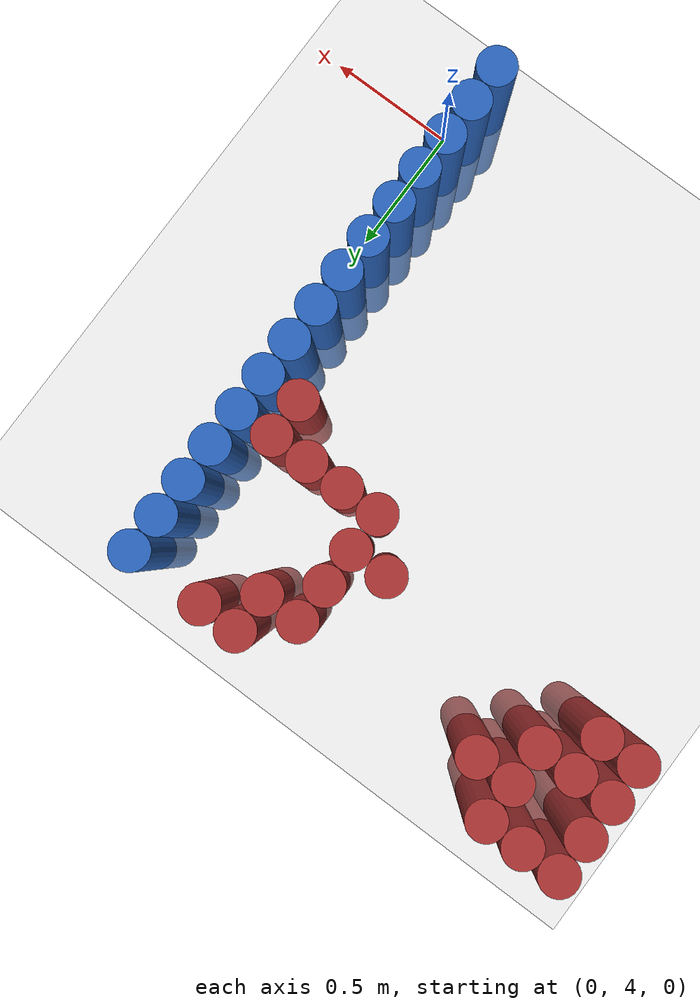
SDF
<sdf version="1.6">
 <world name="default">
  <model name="ground_plane">
   <static>1</static>
   <link name="link">
    <collision name="collision">
     <geometry><plane><normal>0 0 1</normal><size>100 100</size></plane></geometry>
     <surface><friction><ode><mu>100</mu><mu2>50</mu2></ode></friction></surface>
    </collision>
    <visual name="visual">
     <cast_shadows>0</cast_shadows>
     <geometry><plane><normal>0 0 1</normal><size>100 100</size></plane></geometry>
     <material>
      <script><uri>file://media/materials/scripts/gazebo.material</uri><name>Gazebo/Grey</name></script>
     </material>
    </visual>
   </link>
  </model>
  <model name="unit_cylinder_78">
   <static>1</static>
   <pose>-0.075000 3.825000 0.000000 0.000000 0.000000 0.000000</pose>
   <link name="link">
    <inertial>
     <mass>1</mass>
     <inertia><ixx>0.145833</ixx><ixy>0</ixy><ixz>0</ixz><iyy>0.145833</iyy><iyz>0</iyz><izz>0.125</izz></inertia>
    </inertial>
    <collision name="collision">
     <geometry><cylinder><radius>0.075000</radius><length>1</length></cylinder></geometry>
    </collision>
    <visual name="visual">
     <geometry><cylinder><radius>0.075000</radius><length>1</length></cylinder></geometry>
     <material>
      <ambient>0.152000 0.379000 0.720000 1</ambient>
      <diffuse>0.152000 0.379000 0.720000 1</diffuse>
     </material>
     <material>
      <script><name>Gazebo/Grey</name><uri>file://media/materials/scripts/gazebo.material</uri></script>
     </material>
    </visual>
    <sensor name="sensor_contact" type="contact"><contact><collision>collision</collision></contact></sensor>
   </link>
   <plugin filename="gz-sim-touchplugin-system" name="gz::sim::systems::TouchPlugin">
    <target>robot</target>
    <namespace>robot</namespace>
    <time>0.001</time>
    <enabled>true</enabled>
   </plugin>
  </model>
  <model name="unit_cylinder_80">
   <static>1</static>
   <pose>-0.075000 3.975000 0.000000 0.000000 0.000000 0.000000</pose>
   <link name="link">
    <inertial>
     <mass>1</mass>
     <inertia><ixx>0.145833</ixx><ixy>0</ixy><ixz>0</ixz><iyy>0.145833</iyy><iyz>0</iyz><izz>0.125</izz></inertia>
    </inertial>
    <collision name="collision">
     <geometry><cylinder><radius>0.075000</radius><length>1</length></cylinder></geometry>
    </collision>
    <visual name="visual">
     <geometry><cylinder><radius>0.075000</radius><length>1</length></cylinder></geometry>
     <material>
      <ambient>0.152000 0.379000 0.720000 1</ambient>
      <diffuse>0.152000 0.379000 0.720000 1</diffuse>
     </material>
     <material>
      <script><name>Gazebo/Grey</name><uri>file://media/materials/scripts/gazebo.material</uri></script>
     </material>
    </visual>
    <sensor name="sensor_contact" type="contact"><contact><collision>collision</collision></contact></sensor>
   </link>
   <plugin filename="gz-sim-touchplugin-system" name="gz::sim::systems::TouchPlugin">
    <target>robot</target>
    <namespace>robot</namespace>
    <time>0.001</time>
    <enabled>true</enabled>
   </plugin>
  </model>
  <model name="unit_cylinder_82">
   <static>1</static>
   <pose>-0.075000 4.125000 0.000000 0.000000 0.000000 0.000000</pose>
   <link name="link">
    <inertial>
     <mass>1</mass>
     <inertia><ixx>0.145833</ixx><ixy>0</ixy><ixz>0</ixz><iyy>0.145833</iyy><iyz>0</iyz><izz>0.125</izz></inertia>
    </inertial>
    <collision name="collision">
     <geometry><cylinder><radius>0.075000</radius><length>1</length></cylinder></geometry>
    </collision>
    <visual name="visual">
     <geometry><cylinder><radius>0.075000</radius><length>1</length></cylinder></geometry>
     <material>
      <ambient>0.152000 0.379000 0.720000 1</ambient>
      <diffuse>0.152000 0.379000 0.720000 1</diffuse>
     </material>
     <material>
      <script><name>Gazebo/Grey</name><uri>file://media/materials/scripts/gazebo.material</uri></script>
     </material>
    </visual>
    <sensor name="sensor_contact" type="contact"><contact><collision>collision</collision></contact></sensor>
   </link>
   <plugin filename="gz-sim-touchplugin-system" name="gz::sim::systems::TouchPlugin">
    <target>robot</target>
    <namespace>robot</namespace>
    <time>0.001</time>
    <enabled>true</enabled>
   </plugin>
  </model>
  <model name="unit_cylinder_84">
   <static>1</static>
   <pose>-0.075000 4.275000 0.000000 0.000000 0.000000 0.000000</pose>
   <link name="link">
    <inertial>
     <mass>1</mass>
     <inertia><ixx>0.145833</ixx><ixy>0</ixy><ixz>0</ixz><iyy>0.145833</iyy><iyz>0</iyz><izz>0.125</izz></inertia>
    </inertial>
    <collision name="collision">
     <geometry><cylinder><radius>0.075000</radius><length>1</length></cylinder></geometry>
    </collision>
    <visual name="visual">
     <geometry><cylinder><radius>0.075000</radius><length>1</length></cylinder></geometry>
     <material>
      <ambient>0.152000 0.379000 0.720000 1</ambient>
      <diffuse>0.152000 0.379000 0.720000 1</diffuse>
     </material>
     <material>
      <script><name>Gazebo/Grey</name><uri>file://media/materials/scripts/gazebo.material</uri></script>
     </material>
    </visual>
    <sensor name="sensor_contact" type="contact"><contact><collision>collision</collision></contact></sensor>
   </link>
   <plugin filename="gz-sim-touchplugin-system" name="gz::sim::systems::TouchPlugin">
    <target>robot</target>
    <namespace>robot</namespace>
    <time>0.001</time>
    <enabled>true</enabled>
   </plugin>
  </model>
  <model name="unit_cylinder_86">
   <static>1</static>
   <pose>-0.075000 4.425000 0.000000 0.000000 0.000000 0.000000</pose>
   <link name="link">
    <inertial>
     <mass>1</mass>
     <inertia><ixx>0.145833</ixx><ixy>0</ixy><ixz>0</ixz><iyy>0.145833</iyy><iyz>0</iyz><izz>0.125</izz></inertia>
    </inertial>
    <collision name="collision">
     <geometry><cylinder><radius>0.075000</radius><length>1</length></cylinder></geometry>
    </collision>
    <visual name="visual">
     <geometry><cylinder><radius>0.075000</radius><length>1</length></cylinder></geometry>
     <material>
      <ambient>0.152000 0.379000 0.720000 1</ambient>
      <diffuse>0.152000 0.379000 0.720000 1</diffuse>
     </material>
     <material>
      <script><name>Gazebo/Grey</name><uri>file://media/materials/scripts/gazebo.material</uri></script>
     </material>
    </visual>
    <sensor name="sensor_contact" type="contact"><contact><collision>collision</collision></contact></sensor>
   </link>
   <plugin filename="gz-sim-touchplugin-system" name="gz::sim::systems::TouchPlugin">
    <target>robot</target>
    <namespace>robot</namespace>
    <time>0.001</time>
    <enabled>true</enabled>
   </plugin>
  </model>
  <model name="unit_cylinder_88">
   <static>1</static>
   <pose>-0.075000 4.575000 0.000000 0.000000 0.000000 0.000000</pose>
   <link name="link">
    <inertial>
     <mass>1</mass>
     <inertia><ixx>0.145833</ixx><ixy>0</ixy><ixz>0</ixz><iyy>0.145833</iyy><iyz>0</iyz><izz>0.125</izz></inertia>
    </inertial>
    <collision name="collision">
     <geometry><cylinder><radius>0.075000</radius><length>1</length></cylinder></geometry>
    </collision>
    <visual name="visual">
     <geometry><cylinder><radius>0.075000</radius><length>1</length></cylinder></geometry>
     <material>
      <ambient>0.152000 0.379000 0.720000 1</ambient>
      <diffuse>0.152000 0.379000 0.720000 1</diffuse>
     </material>
     <material>
      <script><name>Gazebo/Grey</name><uri>file://media/materials/scripts/gazebo.material</uri></script>
     </material>
    </visual>
    <sensor name="sensor_contact" type="contact"><contact><collision>collision</collision></contact></sensor>
   </link>
   <plugin filename="gz-sim-touchplugin-system" name="gz::sim::systems::TouchPlugin">
    <target>robot</target>
    <namespace>robot</namespace>
    <time>0.001</time>
    <enabled>true</enabled>
   </plugin>
  </model>
  <model name="unit_cylinder_90">
   <static>1</static>
   <pose>-0.075000 4.725000 0.000000 0.000000 0.000000 0.000000</pose>
   <link name="link">
    <inertial>
     <mass>1</mass>
     <inertia><ixx>0.145833</ixx><ixy>0</ixy><ixz>0</ixz><iyy>0.145833</iyy><iyz>0</iyz><izz>0.125</izz></inertia>
    </inertial>
    <collision name="collision">
     <geometry><cylinder><radius>0.075000</radius><length>1</length></cylinder></geometry>
    </collision>
    <visual name="visual">
     <geometry><cylinder><radius>0.075000</radius><length>1</length></cylinder></geometry>
     <material>
      <ambient>0.152000 0.379000 0.720000 1</ambient>
      <diffuse>0.152000 0.379000 0.720000 1</diffuse>
     </material>
     <material>
      <script><name>Gazebo/Grey</name><uri>file://media/materials/scripts/gazebo.material</uri></script>
     </material>
    </visual>
    <sensor name="sensor_contact" type="contact"><contact><collision>collision</collision></contact></sensor>
   </link>
   <plugin filename="gz-sim-touchplugin-system" name="gz::sim::systems::TouchPlugin">
    <target>robot</target>
    <namespace>robot</namespace>
    <time>0.001</time>
    <enabled>true</enabled>
   </plugin>
  </model>
  <model name="unit_cylinder_92">
   <static>1</static>
   <pose>-0.075000 4.875000 0.000000 0.000000 0.000000 0.000000</pose>
   <link name="link">
    <inertial>
     <mass>1</mass>
     <inertia><ixx>0.145833</ixx><ixy>0</ixy><ixz>0</ixz><iyy>0.145833</iyy><iyz>0</iyz><izz>0.125</izz></inertia>
    </inertial>
    <collision name="collision">
     <geometry><cylinder><radius>0.075000</radius><length>1</length></cylinder></geometry>
    </collision>
    <visual name="visual">
     <geometry><cylinder><radius>0.075000</radius><length>1</length></cylinder></geometry>
     <material>
      <ambient>0.152000 0.379000 0.720000 1</ambient>
      <diffuse>0.152000 0.379000 0.720000 1</diffuse>
     </material>
     <material>
      <script><name>Gazebo/Grey</name><uri>file://media/materials/scripts/gazebo.material</uri></script>
     </material>
    </visual>
    <sensor name="sensor_contact" type="contact"><contact><collision>collision</collision></contact></sensor>
   </link>
   <plugin filename="gz-sim-touchplugin-system" name="gz::sim::systems::TouchPlugin">
    <target>robot</target>
    <namespace>robot</namespace>
    <time>0.001</time>
    <enabled>true</enabled>
   </plugin>
  </model>
  <model name="unit_cylinder_94">
   <static>1</static>
   <pose>-0.075000 5.025000 0.000000 0.000000 0.000000 0.000000</pose>
   <link name="link">
    <inertial>
     <mass>1</mass>
     <inertia><ixx>0.145833</ixx><ixy>0</ixy><ixz>0</ixz><iyy>0.145833</iyy><iyz>0</iyz><izz>0.125</izz></inertia>
    </inertial>
    <collision name="collision">
     <geometry><cylinder><radius>0.075000</radius><length>1</length></cylinder></geometry>
    </collision>
    <visual name="visual">
     <geometry><cylinder><radius>0.075000</radius><length>1</length></cylinder></geometry>
     <material>
      <ambient>0.152000 0.379000 0.720000 1</ambient>
      <diffuse>0.152000 0.379000 0.720000 1</diffuse>
     </material>
     <material>
      <script><name>Gazebo/Grey</name><uri>file://media/materials/scripts/gazebo.material</uri></script>
     </material>
    </visual>
    <sensor name="sensor_contact" type="contact"><contact><collision>collision</collision></contact></sensor>
   </link>
   <plugin filename="gz-sim-touchplugin-system" name="gz::sim::systems::TouchPlugin">
    <target>robot</target>
    <namespace>robot</namespace>
    <time>0.001</time>
    <enabled>true</enabled>
   </plugin>
  </model>
  <model name="unit_cylinder_212">
   <static>1</static>
   <pose>-1.875000 5.475000 0.000000 0.000000 0.000000 0.000000</pose>
   <link name="link">
    <inertial>
     <mass>1</mass>
     <inertia><ixx>0.145833</ixx><ixy>0</ixy><ixz>0</ixz><iyy>0.145833</iyy><iyz>0</iyz><izz>0.125</izz></inertia>
    </inertial>
    <collision name="collision">
     <geometry><cylinder><radius>0.075000</radius><length>1</length></cylinder></geometry>
    </collision>
    <visual name="visual">
     <geometry><cylinder><radius>0.075000</radius><length>1</length></cylinder></geometry>
     <material>
      <ambient>0.648000 0.192000 0.192000 1</ambient>
      <diffuse>0.648000 0.192000 0.192000 1</diffuse>
     </material>
     <material>
      <script><name>Gazebo/Grey</name><uri>file://media/materials/scripts/gazebo.material</uri></script>
     </material>
    </visual>
    <sensor name="sensor_contact" type="contact"><contact><collision>collision</collision></contact></sensor>
   </link>
   <plugin filename="gz-sim-touchplugin-system" name="gz::sim::systems::TouchPlugin">
    <target>robot</target>
    <namespace>robot</namespace>
    <time>0.001</time>
    <enabled>true</enabled>
   </plugin>
  </model>
  <model name="unit_cylinder_213">
   <static>1</static>
   <pose>-1.875000 5.625000 0.000000 0.000000 0.000000 0.000000</pose>
   <link name="link">
    <inertial>
     <mass>1</mass>
     <inertia><ixx>0.145833</ixx><ixy>0</ixy><ixz>0</ixz><iyy>0.145833</iyy><iyz>0</iyz><izz>0.125</izz></inertia>
    </inertial>
    <collision name="collision">
     <geometry><cylinder><radius>0.075000</radius><length>1</length></cylinder></geometry>
    </collision>
    <visual name="visual">
     <geometry><cylinder><radius>0.075000</radius><length>1</length></cylinder></geometry>
     <material>
      <ambient>0.648000 0.192000 0.192000 1</ambient>
      <diffuse>0.648000 0.192000 0.192000 1</diffuse>
     </material>
     <material>
      <script><name>Gazebo/Grey</name><uri>file://media/materials/scripts/gazebo.material</uri></script>
     </material>
    </visual>
    <sensor name="sensor_contact" type="contact"><contact><collision>collision</collision></contact></sensor>
   </link>
   <plugin filename="gz-sim-touchplugin-system" name="gz::sim::systems::TouchPlugin">
    <target>robot</target>
    <namespace>robot</namespace>
    <time>0.001</time>
    <enabled>true</enabled>
   </plugin>
  </model>
  <model name="unit_cylinder_214">
   <static>1</static>
   <pose>-1.875000 5.775000 0.000000 0.000000 0.000000 0.000000</pose>
   <link name="link">
    <inertial>
     <mass>1</mass>
     <inertia><ixx>0.145833</ixx><ixy>0</ixy><ixz>0</ixz><iyy>0.145833</iyy><iyz>0</iyz><izz>0.125</izz></inertia>
    </inertial>
    <collision name="collision">
     <geometry><cylinder><radius>0.075000</radius><length>1</length></cylinder></geometry>
    </collision>
    <visual name="visual">
     <geometry><cylinder><radius>0.075000</radius><length>1</length></cylinder></geometry>
     <material>
      <ambient>0.648000 0.192000 0.192000 1</ambient>
      <diffuse>0.648000 0.192000 0.192000 1</diffuse>
     </material>
     <material>
      <script><name>Gazebo/Grey</name><uri>file://media/materials/scripts/gazebo.material</uri></script>
     </material>
    </visual>
    <sensor name="sensor_contact" type="contact"><contact><collision>collision</collision></contact></sensor>
   </link>
   <plugin filename="gz-sim-touchplugin-system" name="gz::sim::systems::TouchPlugin">
    <target>robot</target>
    <namespace>robot</namespace>
    <time>0.001</time>
    <enabled>true</enabled>
   </plugin>
  </model>
  <model name="unit_cylinder_215">
   <static>1</static>
   <pose>-1.875000 5.925000 0.000000 0.000000 0.000000 0.000000</pose>
   <link name="link">
    <inertial>
     <mass>1</mass>
     <inertia><ixx>0.145833</ixx><ixy>0</ixy><ixz>0</ixz><iyy>0.145833</iyy><iyz>0</iyz><izz>0.125</izz></inertia>
    </inertial>
    <collision name="collision">
     <geometry><cylinder><radius>0.075000</radius><length>1</length></cylinder></geometry>
    </collision>
    <visual name="visual">
     <geometry><cylinder><radius>0.075000</radius><length>1</length></cylinder></geometry>
     <material>
      <ambient>0.648000 0.192000 0.192000 1</ambient>
      <diffuse>0.648000 0.192000 0.192000 1</diffuse>
     </material>
     <material>
      <script><name>Gazebo/Grey</name><uri>file://media/materials/scripts/gazebo.material</uri></script>
     </material>
    </visual>
    <sensor name="sensor_contact" type="contact"><contact><collision>collision</collision></contact></sensor>
   </link>
   <plugin filename="gz-sim-touchplugin-system" name="gz::sim::systems::TouchPlugin">
    <target>robot</target>
    <namespace>robot</namespace>
    <time>0.001</time>
    <enabled>true</enabled>
   </plugin>
  </model>
  <model name="unit_cylinder_218">
   <static>1</static>
   <pose>-1.725000 5.475000 0.000000 0.000000 0.000000 0.000000</pose>
   <link name="link">
    <inertial>
     <mass>1</mass>
     <inertia><ixx>0.145833</ixx><ixy>0</ixy><ixz>0</ixz><iyy>0.145833</iyy><iyz>0</iyz><izz>0.125</izz></inertia>
    </inertial>
    <collision name="collision">
     <geometry><cylinder><radius>0.075000</radius><length>1</length></cylinder></geometry>
    </collision>
    <visual name="visual">
     <geometry><cylinder><radius>0.075000</radius><length>1</length></cylinder></geometry>
     <material>
      <ambient>0.648000 0.192000 0.192000 1</ambient>
      <diffuse>0.648000 0.192000 0.192000 1</diffuse>
     </material>
     <material>
      <script><name>Gazebo/Grey</name><uri>file://media/materials/scripts/gazebo.material</uri></script>
     </material>
    </visual>
    <sensor name="sensor_contact" type="contact"><contact><collision>collision</collision></contact></sensor>
   </link>
   <plugin filename="gz-sim-touchplugin-system" name="gz::sim::systems::TouchPlugin">
    <target>robot</target>
    <namespace>robot</namespace>
    <time>0.001</time>
    <enabled>true</enabled>
   </plugin>
  </model>
  <model name="unit_cylinder_219">
   <static>1</static>
   <pose>-1.725000 5.625000 0.000000 0.000000 0.000000 0.000000</pose>
   <link name="link">
    <inertial>
     <mass>1</mass>
     <inertia><ixx>0.145833</ixx><ixy>0</ixy><ixz>0</ixz><iyy>0.145833</iyy><iyz>0</iyz><izz>0.125</izz></inertia>
    </inertial>
    <collision name="collision">
     <geometry><cylinder><radius>0.075000</radius><length>1</length></cylinder></geometry>
    </collision>
    <visual name="visual">
     <geometry><cylinder><radius>0.075000</radius><length>1</length></cylinder></geometry>
     <material>
      <ambient>0.648000 0.192000 0.192000 1</ambient>
      <diffuse>0.648000 0.192000 0.192000 1</diffuse>
     </material>
     <material>
      <script><name>Gazebo/Grey</name><uri>file://media/materials/scripts/gazebo.material</uri></script>
     </material>
    </visual>
    <sensor name="sensor_contact" type="contact"><contact><collision>collision</collision></contact></sensor>
   </link>
   <plugin filename="gz-sim-touchplugin-system" name="gz::sim::systems::TouchPlugin">
    <target>robot</target>
    <namespace>robot</namespace>
    <time>0.001</time>
    <enabled>true</enabled>
   </plugin>
  </model>
  <model name="unit_cylinder_220">
   <static>1</static>
   <pose>-1.725000 5.925000 0.000000 0.000000 0.000000 0.000000</pose>
   <link name="link">
    <inertial>
     <mass>1</mass>
     <inertia><ixx>0.145833</ixx><ixy>0</ixy><ixz>0</ixz><iyy>0.145833</iyy><iyz>0</iyz><izz>0.125</izz></inertia>
    </inertial>
    <collision name="collision">
     <geometry><cylinder><radius>0.075000</radius><length>1</length></cylinder></geometry>
    </collision>
    <visual name="visual">
     <geometry><cylinder><radius>0.075000</radius><length>1</length></cylinder></geometry>
     <material>
      <ambient>0.648000 0.192000 0.192000 1</ambient>
      <diffuse>0.648000 0.192000 0.192000 1</diffuse>
     </material>
     <material>
      <script><name>Gazebo/Grey</name><uri>file://media/materials/scripts/gazebo.material</uri></script>
     </material>
    </visual>
    <sensor name="sensor_contact" type="contact"><contact><collision>collision</collision></contact></sensor>
   </link>
   <plugin filename="gz-sim-touchplugin-system" name="gz::sim::systems::TouchPlugin">
    <target>robot</target>
    <namespace>robot</namespace>
    <time>0.001</time>
    <enabled>true</enabled>
   </plugin>
  </model>
  <model name="unit_cylinder_224">
   <static>1</static>
   <pose>-1.575000 5.625000 0.000000 0.000000 0.000000 0.000000</pose>
   <link name="link">
    <inertial>
     <mass>1</mass>
     <inertia><ixx>0.145833</ixx><ixy>0</ixy><ixz>0</ixz><iyy>0.145833</iyy><iyz>0</iyz><izz>0.125</izz></inertia>
    </inertial>
    <collision name="collision">
     <geometry><cylinder><radius>0.075000</radius><length>1</length></cylinder></geometry>
    </collision>
    <visual name="visual">
     <geometry><cylinder><radius>0.075000</radius><length>1</length></cylinder></geometry>
     <material>
      <ambient>0.648000 0.192000 0.192000 1</ambient>
      <diffuse>0.648000 0.192000 0.192000 1</diffuse>
     </material>
     <material>
      <script><name>Gazebo/Grey</name><uri>file://media/materials/scripts/gazebo.material</uri></script>
     </material>
    </visual>
    <sensor name="sensor_contact" type="contact"><contact><collision>collision</collision></contact></sensor>
   </link>
   <plugin filename="gz-sim-touchplugin-system" name="gz::sim::systems::TouchPlugin">
    <target>robot</target>
    <namespace>robot</namespace>
    <time>0.001</time>
    <enabled>true</enabled>
   </plugin>
  </model>
  <model name="unit_cylinder_225">
   <static>1</static>
   <pose>-1.575000 5.775000 0.000000 0.000000 0.000000 0.000000</pose>
   <link name="link">
    <inertial>
     <mass>1</mass>
     <inertia><ixx>0.145833</ixx><ixy>0</ixy><ixz>0</ixz><iyy>0.145833</iyy><iyz>0</iyz><izz>0.125</izz></inertia>
    </inertial>
    <collision name="collision">
     <geometry><cylinder><radius>0.075000</radius><length>1</length></cylinder></geometry>
    </collision>
    <visual name="visual">
     <geometry><cylinder><radius>0.075000</radius><length>1</length></cylinder></geometry>
     <material>
      <ambient>0.648000 0.192000 0.192000 1</ambient>
      <diffuse>0.648000 0.192000 0.192000 1</diffuse>
     </material>
     <material>
      <script><name>Gazebo/Grey</name><uri>file://media/materials/scripts/gazebo.material</uri></script>
     </material>
    </visual>
    <sensor name="sensor_contact" type="contact"><contact><collision>collision</collision></contact></sensor>
   </link>
   <plugin filename="gz-sim-touchplugin-system" name="gz::sim::systems::TouchPlugin">
    <target>robot</target>
    <namespace>robot</namespace>
    <time>0.001</time>
    <enabled>true</enabled>
   </plugin>
  </model>
  <model name="unit_cylinder_226">
   <static>1</static>
   <pose>-1.575000 5.925000 0.000000 0.000000 0.000000 0.000000</pose>
   <link name="link">
    <inertial>
     <mass>1</mass>
     <inertia><ixx>0.145833</ixx><ixy>0</ixy><ixz>0</ixz><iyy>0.145833</iyy><iyz>0</iyz><izz>0.125</izz></inertia>
    </inertial>
    <collision name="collision">
     <geometry><cylinder><radius>0.075000</radius><length>1</length></cylinder></geometry>
    </collision>
    <visual name="visual">
     <geometry><cylinder><radius>0.075000</radius><length>1</length></cylinder></geometry>
     <material>
      <ambient>0.648000 0.192000 0.192000 1</ambient>
      <diffuse>0.648000 0.192000 0.192000 1</diffuse>
     </material>
     <material>
      <script><name>Gazebo/Grey</name><uri>file://media/materials/scripts/gazebo.material</uri></script>
     </material>
    </visual>
    <sensor name="sensor_contact" type="contact"><contact><collision>collision</collision></contact></sensor>
   </link>
   <plugin filename="gz-sim-touchplugin-system" name="gz::sim::systems::TouchPlugin">
    <target>robot</target>
    <namespace>robot</namespace>
    <time>0.001</time>
    <enabled>true</enabled>
   </plugin>
  </model>
  <model name="unit_cylinder_236">
   <static>1</static>
   <pose>-1.425000 5.775000 0.000000 0.000000 0.000000 0.000000</pose>
   <link name="link">
    <inertial>
     <mass>1</mass>
     <inertia><ixx>0.145833</ixx><ixy>0</ixy><ixz>0</ixz><iyy>0.145833</iyy><iyz>0</iyz><izz>0.125</izz></inertia>
    </inertial>
    <collision name="collision">
     <geometry><cylinder><radius>0.075000</radius><length>1</length></cylinder></geometry>
    </collision>
    <visual name="visual">
     <geometry><cylinder><radius>0.075000</radius><length>1</length></cylinder></geometry>
     <material>
      <ambient>0.648000 0.192000 0.192000 1</ambient>
      <diffuse>0.648000 0.192000 0.192000 1</diffuse>
     </material>
     <material>
      <script><name>Gazebo/Grey</name><uri>file://media/materials/scripts/gazebo.material</uri></script>
     </material>
    </visual>
    <sensor name="sensor_contact" type="contact"><contact><collision>collision</collision></contact></sensor>
   </link>
   <plugin filename="gz-sim-touchplugin-system" name="gz::sim::systems::TouchPlugin">
    <target>robot</target>
    <namespace>robot</namespace>
    <time>0.001</time>
    <enabled>true</enabled>
   </plugin>
  </model>
  <model name="unit_cylinder_266">
   <static>1</static>
   <pose>-0.825000 5.475000 0.000000 0.000000 0.000000 0.000000</pose>
   <link name="link">
    <inertial>
     <mass>1</mass>
     <inertia><ixx>0.145833</ixx><ixy>0</ixy><ixz>0</ixz><iyy>0.145833</iyy><iyz>0</iyz><izz>0.125</izz></inertia>
    </inertial>
    <collision name="collision">
     <geometry><cylinder><radius>0.075000</radius><length>1</length></cylinder></geometry>
    </collision>
    <visual name="visual">
     <geometry><cylinder><radius>0.075000</radius><length>1</length></cylinder></geometry>
     <material>
      <ambient>0.648000 0.192000 0.192000 1</ambient>
      <diffuse>0.648000 0.192000 0.192000 1</diffuse>
     </material>
     <material>
      <script><name>Gazebo/Grey</name><uri>file://media/materials/scripts/gazebo.material</uri></script>
     </material>
    </visual>
    <sensor name="sensor_contact" type="contact"><contact><collision>collision</collision></contact></sensor>
   </link>
   <plugin filename="gz-sim-touchplugin-system" name="gz::sim::systems::TouchPlugin">
    <target>robot</target>
    <namespace>robot</namespace>
    <time>0.001</time>
    <enabled>true</enabled>
   </plugin>
  </model>
  <model name="unit_cylinder_275">
   <static>1</static>
   <pose>-0.675000 5.325000 0.000000 0.000000 0.000000 0.000000</pose>
   <link name="link">
    <inertial>
     <mass>1</mass>
     <inertia><ixx>0.145833</ixx><ixy>0</ixy><ixz>0</ixz><iyy>0.145833</iyy><iyz>0</iyz><izz>0.125</izz></inertia>
    </inertial>
    <collision name="collision">
     <geometry><cylinder><radius>0.075000</radius><length>1</length></cylinder></geometry>
    </collision>
    <visual name="visual">
     <geometry><cylinder><radius>0.075000</radius><length>1</length></cylinder></geometry>
     <material>
      <ambient>0.648000 0.192000 0.192000 1</ambient>
      <diffuse>0.648000 0.192000 0.192000 1</diffuse>
     </material>
     <material>
      <script><name>Gazebo/Grey</name><uri>file://media/materials/scripts/gazebo.material</uri></script>
     </material>
    </visual>
    <sensor name="sensor_contact" type="contact"><contact><collision>collision</collision></contact></sensor>
   </link>
   <plugin filename="gz-sim-touchplugin-system" name="gz::sim::systems::TouchPlugin">
    <target>robot</target>
    <namespace>robot</namespace>
    <time>0.001</time>
    <enabled>true</enabled>
   </plugin>
  </model>
  <model name="unit_cylinder_276">
   <static>1</static>
   <pose>-0.675000 5.475000 0.000000 0.000000 0.000000 0.000000</pose>
   <link name="link">
    <inertial>
     <mass>1</mass>
     <inertia><ixx>0.145833</ixx><ixy>0</ixy><ixz>0</ixz><iyy>0.145833</iyy><iyz>0</iyz><izz>0.125</izz></inertia>
    </inertial>
    <collision name="collision">
     <geometry><cylinder><radius>0.075000</radius><length>1</length></cylinder></geometry>
    </collision>
    <visual name="visual">
     <geometry><cylinder><radius>0.075000</radius><length>1</length></cylinder></geometry>
     <material>
      <ambient>0.648000 0.192000 0.192000 1</ambient>
      <diffuse>0.648000 0.192000 0.192000 1</diffuse>
     </material>
     <material>
      <script><name>Gazebo/Grey</name><uri>file://media/materials/scripts/gazebo.material</uri></script>
     </material>
    </visual>
    <sensor name="sensor_contact" type="contact"><contact><collision>collision</collision></contact></sensor>
   </link>
   <plugin filename="gz-sim-touchplugin-system" name="gz::sim::systems::TouchPlugin">
    <target>robot</target>
    <namespace>robot</namespace>
    <time>0.001</time>
    <enabled>true</enabled>
   </plugin>
  </model>
  <model name="unit_cylinder_277">
   <static>1</static>
   <pose>-0.675000 5.625000 0.000000 0.000000 0.000000 0.000000</pose>
   <link name="link">
    <inertial>
     <mass>1</mass>
     <inertia><ixx>0.145833</ixx><ixy>0</ixy><ixz>0</ixz><iyy>0.145833</iyy><iyz>0</iyz><izz>0.125</izz></inertia>
    </inertial>
    <collision name="collision">
     <geometry><cylinder><radius>0.075000</radius><length>1</length></cylinder></geometry>
    </collision>
    <visual name="visual">
     <geometry><cylinder><radius>0.075000</radius><length>1</length></cylinder></geometry>
     <material>
      <ambient>0.648000 0.192000 0.192000 1</ambient>
      <diffuse>0.648000 0.192000 0.192000 1</diffuse>
     </material>
     <material>
      <script><name>Gazebo/Grey</name><uri>file://media/materials/scripts/gazebo.material</uri></script>
     </material>
    </visual>
    <sensor name="sensor_contact" type="contact"><contact><collision>collision</collision></contact></sensor>
   </link>
   <plugin filename="gz-sim-touchplugin-system" name="gz::sim::systems::TouchPlugin">
    <target>robot</target>
    <namespace>robot</namespace>
    <time>0.001</time>
    <enabled>true</enabled>
   </plugin>
  </model>
  <model name="unit_cylinder_278">
   <static>1</static>
   <pose>-0.675000 5.775000 0.000000 0.000000 0.000000 0.000000</pose>
   <link name="link">
    <inertial>
     <mass>1</mass>
     <inertia><ixx>0.145833</ixx><ixy>0</ixy><ixz>0</ixz><iyy>0.145833</iyy><iyz>0</iyz><izz>0.125</izz></inertia>
    </inertial>
    <collision name="collision">
     <geometry><cylinder><radius>0.075000</radius><length>1</length></cylinder></geometry>
    </collision>
    <visual name="visual">
     <geometry><cylinder><radius>0.075000</radius><length>1</length></cylinder></geometry>
     <material>
      <ambient>0.648000 0.192000 0.192000 1</ambient>
      <diffuse>0.648000 0.192000 0.192000 1</diffuse>
     </material>
     <material>
      <script><name>Gazebo/Grey</name><uri>file://media/materials/scripts/gazebo.material</uri></script>
     </material>
    </visual>
    <sensor name="sensor_contact" type="contact"><contact><collision>collision</collision></contact></sensor>
   </link>
   <plugin filename="gz-sim-touchplugin-system" name="gz::sim::systems::TouchPlugin">
    <target>robot</target>
    <namespace>robot</namespace>
    <time>0.001</time>
    <enabled>true</enabled>
   </plugin>
  </model>
  <model name="unit_cylinder_287">
   <static>1</static>
   <pose>-0.525000 5.325000 0.000000 0.000000 0.000000 0.000000</pose>
   <link name="link">
    <inertial>
     <mass>1</mass>
     <inertia><ixx>0.145833</ixx><ixy>0</ixy><ixz>0</ixz><iyy>0.145833</iyy><iyz>0</iyz><izz>0.125</izz></inertia>
    </inertial>
    <collision name="collision">
     <geometry><cylinder><radius>0.075000</radius><length>1</length></cylinder></geometry>
    </collision>
    <visual name="visual">
     <geometry><cylinder><radius>0.075000</radius><length>1</length></cylinder></geometry>
     <material>
      <ambient>0.648000 0.192000 0.192000 1</ambient>
      <diffuse>0.648000 0.192000 0.192000 1</diffuse>
     </material>
     <material>
      <script><name>Gazebo/Grey</name><uri>file://media/materials/scripts/gazebo.material</uri></script>
     </material>
    </visual>
    <sensor name="sensor_contact" type="contact"><contact><collision>collision</collision></contact></sensor>
   </link>
   <plugin filename="gz-sim-touchplugin-system" name="gz::sim::systems::TouchPlugin">
    <target>robot</target>
    <namespace>robot</namespace>
    <time>0.001</time>
    <enabled>true</enabled>
   </plugin>
  </model>
  <model name="unit_cylinder_288">
   <static>1</static>
   <pose>-0.525000 5.775000 0.000000 0.000000 0.000000 0.000000</pose>
   <link name="link">
    <inertial>
     <mass>1</mass>
     <inertia><ixx>0.145833</ixx><ixy>0</ixy><ixz>0</ixz><iyy>0.145833</iyy><iyz>0</iyz><izz>0.125</izz></inertia>
    </inertial>
    <collision name="collision">
     <geometry><cylinder><radius>0.075000</radius><length>1</length></cylinder></geometry>
    </collision>
    <visual name="visual">
     <geometry><cylinder><radius>0.075000</radius><length>1</length></cylinder></geometry>
     <material>
      <ambient>0.648000 0.192000 0.192000 1</ambient>
      <diffuse>0.648000 0.192000 0.192000 1</diffuse>
     </material>
     <material>
      <script><name>Gazebo/Grey</name><uri>file://media/materials/scripts/gazebo.material</uri></script>
     </material>
    </visual>
    <sensor name="sensor_contact" type="contact"><contact><collision>collision</collision></contact></sensor>
   </link>
   <plugin filename="gz-sim-touchplugin-system" name="gz::sim::systems::TouchPlugin">
    <target>robot</target>
    <namespace>robot</namespace>
    <time>0.001</time>
    <enabled>true</enabled>
   </plugin>
  </model>
  <model name="unit_cylinder_289">
   <static>1</static>
   <pose>-0.525000 5.925000 0.000000 0.000000 0.000000 0.000000</pose>
   <link name="link">
    <inertial>
     <mass>1</mass>
     <inertia><ixx>0.145833</ixx><ixy>0</ixy><ixz>0</ixz><iyy>0.145833</iyy><iyz>0</iyz><izz>0.125</izz></inertia>
    </inertial>
    <collision name="collision">
     <geometry><cylinder><radius>0.075000</radius><length>1</length></cylinder></geometry>
    </collision>
    <visual name="visual">
     <geometry><cylinder><radius>0.075000</radius><length>1</length></cylinder></geometry>
     <material>
      <ambient>0.648000 0.192000 0.192000 1</ambient>
      <diffuse>0.648000 0.192000 0.192000 1</diffuse>
     </material>
     <material>
      <script><name>Gazebo/Grey</name><uri>file://media/materials/scripts/gazebo.material</uri></script>
     </material>
    </visual>
    <sensor name="sensor_contact" type="contact"><contact><collision>collision</collision></contact></sensor>
   </link>
   <plugin filename="gz-sim-touchplugin-system" name="gz::sim::systems::TouchPlugin">
    <target>robot</target>
    <namespace>robot</namespace>
    <time>0.001</time>
    <enabled>true</enabled>
   </plugin>
  </model>
  <model name="unit_cylinder_298">
   <static>1</static>
   <pose>-0.375000 5.325000 0.000000 0.000000 0.000000 0.000000</pose>
   <link name="link">
    <inertial>
     <mass>1</mass>
     <inertia><ixx>0.145833</ixx><ixy>0</ixy><ixz>0</ixz><iyy>0.145833</iyy><iyz>0</iyz><izz>0.125</izz></inertia>
    </inertial>
    <collision name="collision">
     <geometry><cylinder><radius>0.075000</radius><length>1</length></cylinder></geometry>
    </collision>
    <visual name="visual">
     <geometry><cylinder><radius>0.075000</radius><length>1</length></cylinder></geometry>
     <material>
      <ambient>0.648000 0.192000 0.192000 1</ambient>
      <diffuse>0.648000 0.192000 0.192000 1</diffuse>
     </material>
     <material>
      <script><name>Gazebo/Grey</name><uri>file://media/materials/scripts/gazebo.material</uri></script>
     </material>
    </visual>
    <sensor name="sensor_contact" type="contact"><contact><collision>collision</collision></contact></sensor>
   </link>
   <plugin filename="gz-sim-touchplugin-system" name="gz::sim::systems::TouchPlugin">
    <target>robot</target>
    <namespace>robot</namespace>
    <time>0.001</time>
    <enabled>true</enabled>
   </plugin>
  </model>
  <model name="unit_cylinder_299">
   <static>1</static>
   <pose>-0.375000 5.925000 0.000000 0.000000 0.000000 0.000000</pose>
   <link name="link">
    <inertial>
     <mass>1</mass>
     <inertia><ixx>0.145833</ixx><ixy>0</ixy><ixz>0</ixz><iyy>0.145833</iyy><iyz>0</iyz><izz>0.125</izz></inertia>
    </inertial>
    <collision name="collision">
     <geometry><cylinder><radius>0.075000</radius><length>1</length></cylinder></geometry>
    </collision>
    <visual name="visual">
     <geometry><cylinder><radius>0.075000</radius><length>1</length></cylinder></geometry>
     <material>
      <ambient>0.648000 0.192000 0.192000 1</ambient>
      <diffuse>0.648000 0.192000 0.192000 1</diffuse>
     </material>
     <material>
      <script><name>Gazebo/Grey</name><uri>file://media/materials/scripts/gazebo.material</uri></script>
     </material>
    </visual>
    <sensor name="sensor_contact" type="contact"><contact><collision>collision</collision></contact></sensor>
   </link>
   <plugin filename="gz-sim-touchplugin-system" name="gz::sim::systems::TouchPlugin">
    <target>robot</target>
    <namespace>robot</namespace>
    <time>0.001</time>
    <enabled>true</enabled>
   </plugin>
  </model>
  <model name="unit_cylinder_309">
   <static>1</static>
   <pose>-0.225000 5.175000 0.000000 0.000000 0.000000 0.000000</pose>
   <link name="link">
    <inertial>
     <mass>1</mass>
     <inertia><ixx>0.145833</ixx><ixy>0</ixy><ixz>0</ixz><iyy>0.145833</iyy><iyz>0</iyz><izz>0.125</izz></inertia>
    </inertial>
    <collision name="collision">
     <geometry><cylinder><radius>0.075000</radius><length>1</length></cylinder></geometry>
    </collision>
    <visual name="visual">
     <geometry><cylinder><radius>0.075000</radius><length>1</length></cylinder></geometry>
     <material>
      <ambient>0.648000 0.192000 0.192000 1</ambient>
      <diffuse>0.648000 0.192000 0.192000 1</diffuse>
     </material>
     <material>
      <script><name>Gazebo/Grey</name><uri>file://media/materials/scripts/gazebo.material</uri></script>
     </material>
    </visual>
    <sensor name="sensor_contact" type="contact"><contact><collision>collision</collision></contact></sensor>
   </link>
   <plugin filename="gz-sim-touchplugin-system" name="gz::sim::systems::TouchPlugin">
    <target>robot</target>
    <namespace>robot</namespace>
    <time>0.001</time>
    <enabled>true</enabled>
   </plugin>
  </model>
  <model name="unit_cylinder_310">
   <static>1</static>
   <pose>-0.225000 5.325000 0.000000 0.000000 0.000000 0.000000</pose>
   <link name="link">
    <inertial>
     <mass>1</mass>
     <inertia><ixx>0.145833</ixx><ixy>0</ixy><ixz>0</ixz><iyy>0.145833</iyy><iyz>0</iyz><izz>0.125</izz></inertia>
    </inertial>
    <collision name="collision">
     <geometry><cylinder><radius>0.075000</radius><length>1</length></cylinder></geometry>
    </collision>
    <visual name="visual">
     <geometry><cylinder><radius>0.075000</radius><length>1</length></cylinder></geometry>
     <material>
      <ambient>0.648000 0.192000 0.192000 1</ambient>
      <diffuse>0.648000 0.192000 0.192000 1</diffuse>
     </material>
     <material>
      <script><name>Gazebo/Grey</name><uri>file://media/materials/scripts/gazebo.material</uri></script>
     </material>
    </visual>
    <sensor name="sensor_contact" type="contact"><contact><collision>collision</collision></contact></sensor>
   </link>
   <plugin filename="gz-sim-touchplugin-system" name="gz::sim::systems::TouchPlugin">
    <target>robot</target>
    <namespace>robot</namespace>
    <time>0.001</time>
    <enabled>true</enabled>
   </plugin>
  </model>
  <model name="unit_cylinder_317">
   <static>1</static>
   <pose>-0.075000 5.175000 0.000000 0.000000 0.000000 0.000000</pose>
   <link name="link">
    <inertial>
     <mass>1</mass>
     <inertia><ixx>0.145833</ixx><ixy>0</ixy><ixz>0</ixz><iyy>0.145833</iyy><iyz>0</iyz><izz>0.125</izz></inertia>
    </inertial>
    <collision name="collision">
     <geometry><cylinder><radius>0.075000</radius><length>1</length></cylinder></geometry>
    </collision>
    <visual name="visual">
     <geometry><cylinder><radius>0.075000</radius><length>1</length></cylinder></geometry>
     <material>
      <ambient>0.152000 0.379000 0.720000 1</ambient>
      <diffuse>0.152000 0.379000 0.720000 1</diffuse>
     </material>
     <material>
      <script><name>Gazebo/Grey</name><uri>file://media/materials/scripts/gazebo.material</uri></script>
     </material>
    </visual>
    <sensor name="sensor_contact" type="contact"><contact><collision>collision</collision></contact></sensor>
   </link>
   <plugin filename="gz-sim-touchplugin-system" name="gz::sim::systems::TouchPlugin">
    <target>robot</target>
    <namespace>robot</namespace>
    <time>0.001</time>
    <enabled>true</enabled>
   </plugin>
  </model>
  <model name="unit_cylinder_318">
   <static>1</static>
   <pose>-0.075000 5.325000 0.000000 0.000000 0.000000 0.000000</pose>
   <link name="link">
    <inertial>
     <mass>1</mass>
     <inertia><ixx>0.145833</ixx><ixy>0</ixy><ixz>0</ixz><iyy>0.145833</iyy><iyz>0</iyz><izz>0.125</izz></inertia>
    </inertial>
    <collision name="collision">
     <geometry><cylinder><radius>0.075000</radius><length>1</length></cylinder></geometry>
    </collision>
    <visual name="visual">
     <geometry><cylinder><radius>0.075000</radius><length>1</length></cylinder></geometry>
     <material>
      <ambient>0.152000 0.379000 0.720000 1</ambient>
      <diffuse>0.152000 0.379000 0.720000 1</diffuse>
     </material>
     <material>
      <script><name>Gazebo/Grey</name><uri>file://media/materials/scripts/gazebo.material</uri></script>
     </material>
    </visual>
    <sensor name="sensor_contact" type="contact"><contact><collision>collision</collision></contact></sensor>
   </link>
   <plugin filename="gz-sim-touchplugin-system" name="gz::sim::systems::TouchPlugin">
    <target>robot</target>
    <namespace>robot</namespace>
    <time>0.001</time>
    <enabled>true</enabled>
   </plugin>
  </model>
  <model name="unit_cylinder_319">
   <static>1</static>
   <pose>-0.075000 5.475000 0.000000 0.000000 0.000000 0.000000</pose>
   <link name="link">
    <inertial>
     <mass>1</mass>
     <inertia><ixx>0.145833</ixx><ixy>0</ixy><ixz>0</ixz><iyy>0.145833</iyy><iyz>0</iyz><izz>0.125</izz></inertia>
    </inertial>
    <collision name="collision">
     <geometry><cylinder><radius>0.075000</radius><length>1</length></cylinder></geometry>
    </collision>
    <visual name="visual">
     <geometry><cylinder><radius>0.075000</radius><length>1</length></cylinder></geometry>
     <material>
      <ambient>0.152000 0.379000 0.720000 1</ambient>
      <diffuse>0.152000 0.379000 0.720000 1</diffuse>
     </material>
     <material>
      <script><name>Gazebo/Grey</name><uri>file://media/materials/scripts/gazebo.material</uri></script>
     </material>
    </visual>
    <sensor name="sensor_contact" type="contact"><contact><collision>collision</collision></contact></sensor>
   </link>
   <plugin filename="gz-sim-touchplugin-system" name="gz::sim::systems::TouchPlugin">
    <target>robot</target>
    <namespace>robot</namespace>
    <time>0.001</time>
    <enabled>true</enabled>
   </plugin>
  </model>
  <model name="unit_cylinder_320">
   <static>1</static>
   <pose>-0.075000 5.625000 0.000000 0.000000 0.000000 0.000000</pose>
   <link name="link">
    <inertial>
     <mass>1</mass>
     <inertia><ixx>0.145833</ixx><ixy>0</ixy><ixz>0</ixz><iyy>0.145833</iyy><iyz>0</iyz><izz>0.125</izz></inertia>
    </inertial>
    <collision name="collision">
     <geometry><cylinder><radius>0.075000</radius><length>1</length></cylinder></geometry>
    </collision>
    <visual name="visual">
     <geometry><cylinder><radius>0.075000</radius><length>1</length></cylinder></geometry>
     <material>
      <ambient>0.152000 0.379000 0.720000 1</ambient>
      <diffuse>0.152000 0.379000 0.720000 1</diffuse>
     </material>
     <material>
      <script><name>Gazebo/Grey</name><uri>file://media/materials/scripts/gazebo.material</uri></script>
     </material>
    </visual>
    <sensor name="sensor_contact" type="contact"><contact><collision>collision</collision></contact></sensor>
   </link>
   <plugin filename="gz-sim-touchplugin-system" name="gz::sim::systems::TouchPlugin">
    <target>robot</target>
    <namespace>robot</namespace>
    <time>0.001</time>
    <enabled>true</enabled>
   </plugin>
  </model>
  <model name="unit_cylinder_321">
   <static>1</static>
   <pose>-0.075000 5.775000 0.000000 0.000000 0.000000 0.000000</pose>
   <link name="link">
    <inertial>
     <mass>1</mass>
     <inertia><ixx>0.145833</ixx><ixy>0</ixy><ixz>0</ixz><iyy>0.145833</iyy><iyz>0</iyz><izz>0.125</izz></inertia>
    </inertial>
    <collision name="collision">
     <geometry><cylinder><radius>0.075000</radius><length>1</length></cylinder></geometry>
    </collision>
    <visual name="visual">
     <geometry><cylinder><radius>0.075000</radius><length>1</length></cylinder></geometry>
     <material>
      <ambient>0.152000 0.379000 0.720000 1</ambient>
      <diffuse>0.152000 0.379000 0.720000 1</diffuse>
     </material>
     <material>
      <script><name>Gazebo/Grey</name><uri>file://media/materials/scripts/gazebo.material</uri></script>
     </material>
    </visual>
    <sensor name="sensor_contact" type="contact"><contact><collision>collision</collision></contact></sensor>
   </link>
   <plugin filename="gz-sim-touchplugin-system" name="gz::sim::systems::TouchPlugin">
    <target>robot</target>
    <namespace>robot</namespace>
    <time>0.001</time>
    <enabled>true</enabled>
   </plugin>
  </model>
  <model name="unit_cylinder_322">
   <static>1</static>
   <pose>-0.075000 5.925000 0.000000 0.000000 0.000000 0.000000</pose>
   <link name="link">
    <inertial>
     <mass>1</mass>
     <inertia><ixx>0.145833</ixx><ixy>0</ixy><ixz>0</ixz><iyy>0.145833</iyy><iyz>0</iyz><izz>0.125</izz></inertia>
    </inertial>
    <collision name="collision">
     <geometry><cylinder><radius>0.075000</radius><length>1</length></cylinder></geometry>
    </collision>
    <visual name="visual">
     <geometry><cylinder><radius>0.075000</radius><length>1</length></cylinder></geometry>
     <material>
      <ambient>0.152000 0.379000 0.720000 1</ambient>
      <diffuse>0.152000 0.379000 0.720000 1</diffuse>
     </material>
     <material>
      <script><name>Gazebo/Grey</name><uri>file://media/materials/scripts/gazebo.material</uri></script>
     </material>
    </visual>
    <sensor name="sensor_contact" type="contact"><contact><collision>collision</collision></contact></sensor>
   </link>
   <plugin filename="gz-sim-touchplugin-system" name="gz::sim::systems::TouchPlugin">
    <target>robot</target>
    <namespace>robot</namespace>
    <time>0.001</time>
    <enabled>true</enabled>
   </plugin>
  </model>
 </world>
</sdf>
